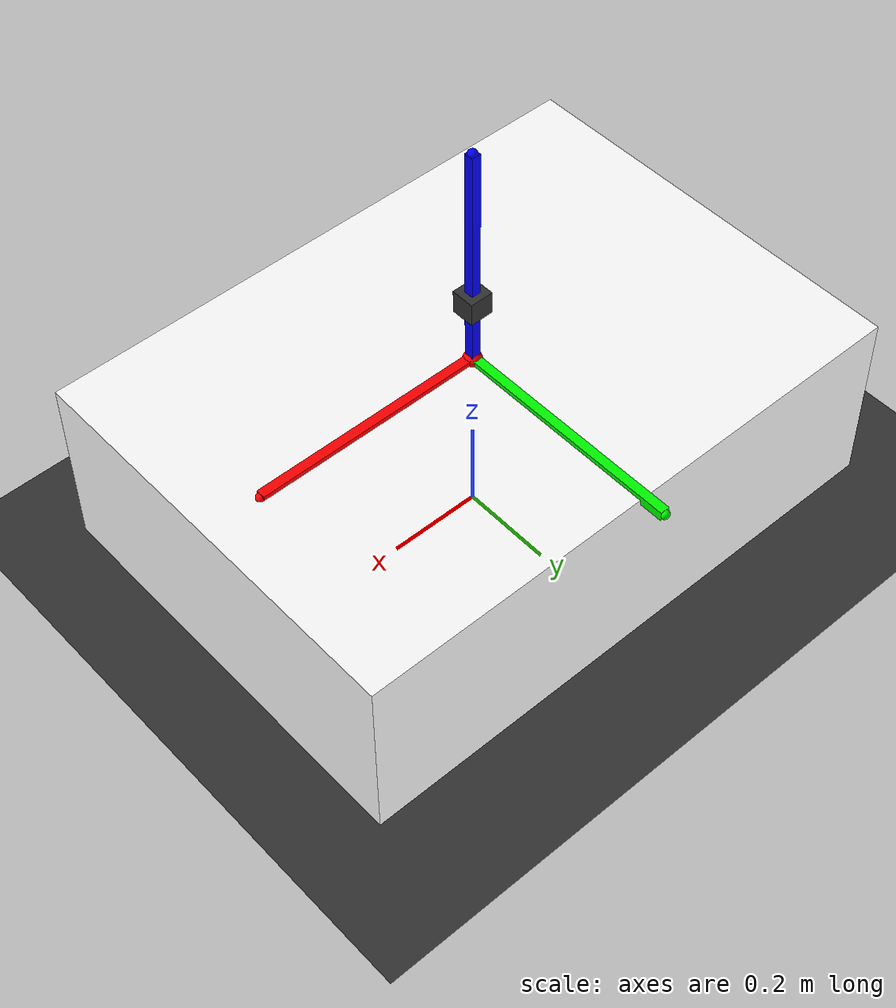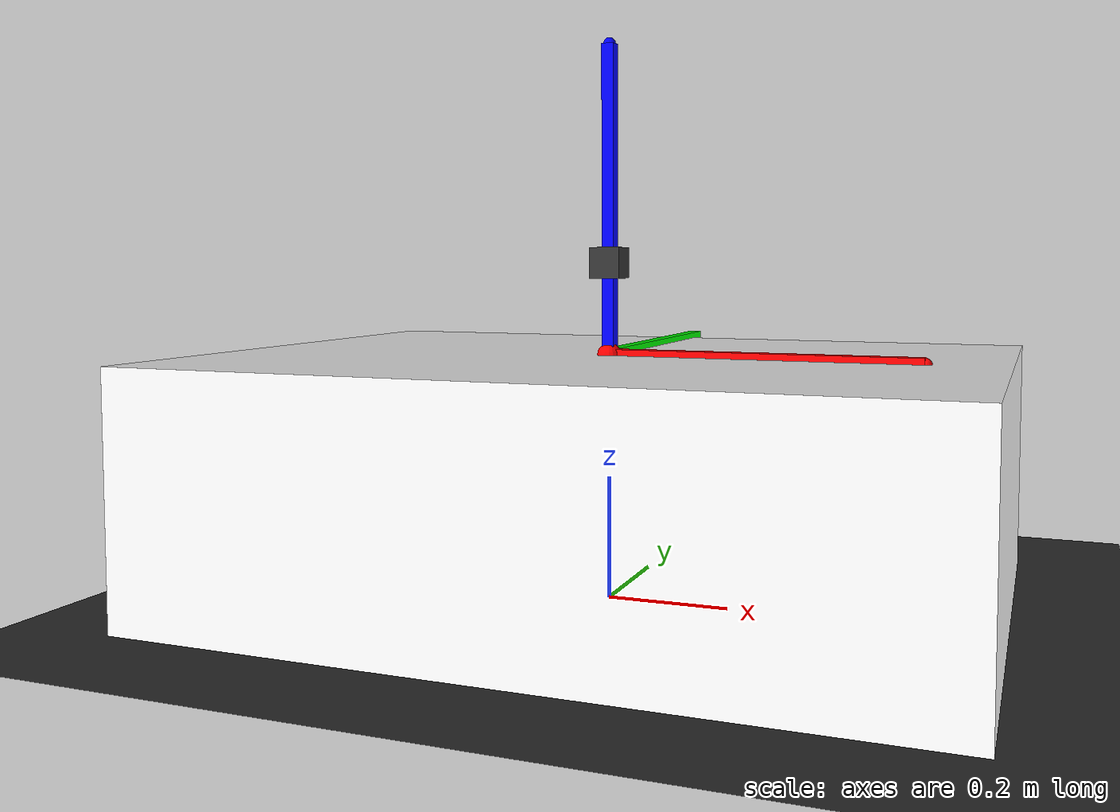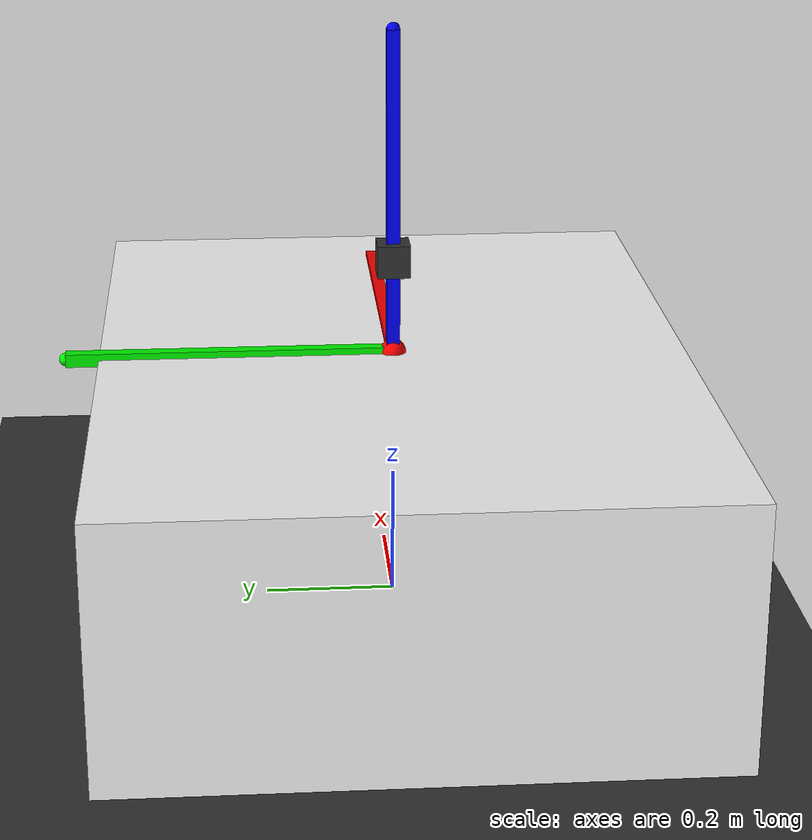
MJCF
<?xml version="1.0" encoding="utf-8"?>
<mujoco>

    <compiler angle="radian" coordinate="local" meshdir="" texturedir=""></compiler>
    <option timestep="0.002">
        <flag warmstart="enable"></flag>
    </option>
    <include file="shared_with_abs_stl_path.xml"></include>
    <worldbody>

        <geom name="floor0" pos="0 0 0" size="1.05 0.7 1" type="plane" condim="3" material="floor_mat"></geom>
        <body name="floor0" pos="0 0 0">
        </body>

        <body name="table0" pos="0 0 0.2"> <!-- table is at 0,0,0.2, table top is at 0, 0, 0.4-->
            <geom size="0.625 0.45 0.2" type="box" rgba="1 1 1 1.0" condim="3" name="table0" material="table_mat" mass="2000" friction="0.1 0.005 0.0001"></geom>
        </body>

        <body name="object0" pos="0.0 0.0 0.55">
            <camera pos="0.025 0.025 3.02" name="yunchu_view" />
            <camera euler="3.1415 0 0" fovy="50" name="head_camera_rgb" pos="0 0 0"></camera>
            <joint name="object0:joint" type="free" damping="0.01"></joint>
            <geom condim="3" mass="2" material="block_mat" name="object0" size="0.025 0.025 0.025" type="box" />
        </body>

        <site name="origin" pos="0 0 0.4" rgba="1 0 0 1.0" size="0.02 0.02 0.02" type="sphere" />
        <site name="x" pos="0.5 0 0.4" rgba="1 0 0 1.0" size="0.01 0.01 0.01" type="sphere" />
        <site name="y" pos="0 0.5 0.4" rgba="0 1 0 1.0" size="0.01 0.01 0.01" type="sphere" />
        <site name="z" pos="0 0 0.9" rgba="0 0 1 1.0" size="0.01 0.01 0.01" type="sphere" />
        <site name="x_axis" pos="0.25 0 0.4" rgba="1 0 0 1.0" size="0.25 0.01 0.01" type="box" />
        <site name="y_axis" pos="0 0.25 0.4" rgba="0 1 0 1.0" size="0.01 0.25 0.01" type="box" />
        <site name="z_axis" pos="0 0 0.65" rgba="0 0 1 1.0" size="0.01 0.01 0.25" type="box" />
        <light directional="true" ambient="0.2 0.2 0.2" diffuse="0.8 0.8 0.8" specular="0.3 0.3 0.3" castshadow="false" pos="0 0 4" dir="0 0 -1" name="light0"></light>
    </worldbody>

    <actuator></actuator>
</mujoco>

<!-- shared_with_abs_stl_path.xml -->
<mujoco>
    <asset>
        <texture type="skybox" builtin="gradient" rgb1="0.44 0.85 0.56" rgb2="0.46 0.87 0.58" width="32" height="32"></texture>
        <texture name="texture_block" file="../textures/block.png" gridsize="3 4" gridlayout=".U..LFRB.D.."></texture>

        <material name="floor_mat" specular="0" shininess="0.5" reflectance="0" rgba="0.2 0.2 0.2 1"></material>
        <material name="table_mat" specular="0" shininess="0.5" reflectance="0" rgba="0.93 0.93 0.93 1"></material>
        <material name="block_mat" specular="0" shininess="0.5" reflectance="0" rgba="0.2 0.2 0.2 1"></material>
        <material name="puck_mat" specular="0" shininess="0.5" reflectance="0" rgba="0.2 0.2 0.2 1"></material>
        <material name="robot0:geomMat" shininess="0.03" specular="0.4"></material>
        <material name="robot0:gripper_finger_mat" shininess="0.03" specular="0.4" reflectance="0"></material>
        <material name="robot0:gripper_mat" shininess="0.03" specular="0.4" reflectance="0"></material>
        <material name="robot0:arm_mat" shininess="0.03" specular="0.4" reflectance="0"></material>
        <material name="robot0:head_mat" shininess="0.03" specular="0.4" reflectance="0"></material>
        <material name="robot0:torso_mat" shininess="0.03" specular="0.4" reflectance="0"></material>
        <material name="robot0:base_mat" shininess="0.03" specular="0.4" reflectance="0"></material>
        <texture file="../textures/ceramic.png" name="tex-ceramic" />
        <material name="ceramic" reflectance="0.5" texrepeat="1 1" texture="tex-ceramic" texuniform="true" />

        <mesh file="../stls/fetch/base_link_collision.stl" name="robot0:base_link"></mesh>
        <mesh file="../stls/fetch/bellows_link_collision.stl" name="robot0:bellows_link"></mesh>
        <mesh file="../stls/fetch/elbow_flex_link_collision.stl" name="robot0:elbow_flex_link"></mesh>
        <mesh file="../stls/fetch/estop_link.stl" name="robot0:estop_link"></mesh>
        <mesh file="../stls/fetch/forearm_roll_link_collision.stl" name="robot0:forearm_roll_link"></mesh>
        <mesh file="../stls/fetch/gripper_link.stl" name="robot0:gripper_link"></mesh>
        <mesh file="../stls/fetch/head_pan_link_collision.stl" name="robot0:head_pan_link"></mesh>
        <mesh file="../stls/fetch/head_tilt_link_collision.stl" name="robot0:head_tilt_link"></mesh>
        <mesh file="../stls/fetch/l_wheel_link_collision.stl" name="robot0:l_wheel_link"></mesh>
        <mesh file="../stls/fetch/laser_link.stl" name="robot0:laser_link"></mesh>
        <mesh file="../stls/fetch/r_wheel_link_collision.stl" name="robot0:r_wheel_link"></mesh>
        <mesh file="../stls/fetch/torso_lift_link_collision.stl" name="robot0:torso_lift_link"></mesh>
        <mesh file="../stls/fetch/shoulder_pan_link_collision.stl" name="robot0:shoulder_pan_link"></mesh>
        <mesh file="../stls/fetch/shoulder_lift_link_collision.stl" name="robot0:shoulder_lift_link"></mesh>
        <mesh file="../stls/fetch/upperarm_roll_link_collision.stl" name="robot0:upperarm_roll_link"></mesh>
        <mesh file="../stls/fetch/wrist_flex_link_collision.stl" name="robot0:wrist_flex_link"></mesh>
        <mesh file="../stls/fetch/wrist_roll_link_collision.stl" name="robot0:wrist_roll_link"></mesh>
        <mesh file="../stls/fetch/torso_fixed_link.stl" name="robot0:torso_fixed_link"></mesh>
    </asset>

    <equality>
    </equality>

    <contact>
    </contact>

    <default>
        <default class="robot0:fetch">
            <geom margin="0.001" material="robot0:geomMat" rgba="1 1 1 1" solimp="0.99 0.99 0.01" solref="0.01 1" type="mesh" user="0"></geom>
            <joint armature="1" damping="50" frictionloss="0" stiffness="0"></joint>

            <default class="robot0:fetchGripper">
                <geom condim="4" margin="0.001" type="box" user="0" rgba="0.356 0.361 0.376 1.0"></geom>
                <joint armature="100" damping="1000" limited="true" solimplimit="0.99 0.999 0.01" solreflimit="0.01 1" type="slide"></joint>
            </default>

            <default class="robot0:grey">
                <geom rgba="0.356 0.361 0.376 1.0"></geom>
            </default>
            <default class="robot0:blue">
                <geom rgba="0.086 0.506 0.767 1.0"></geom>
            </default>
        </default>
    </default>
</mujoco>
